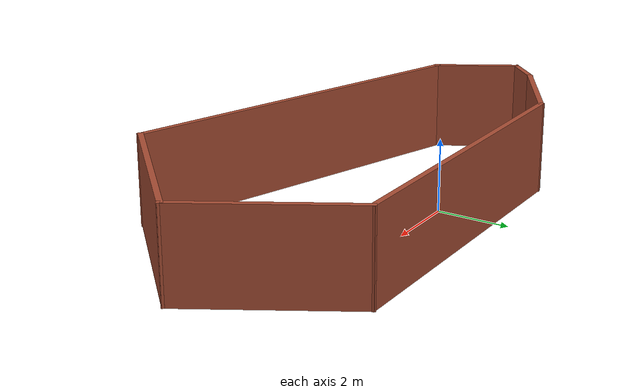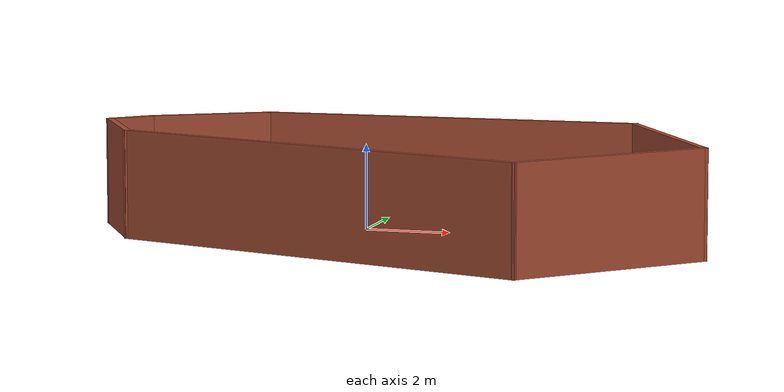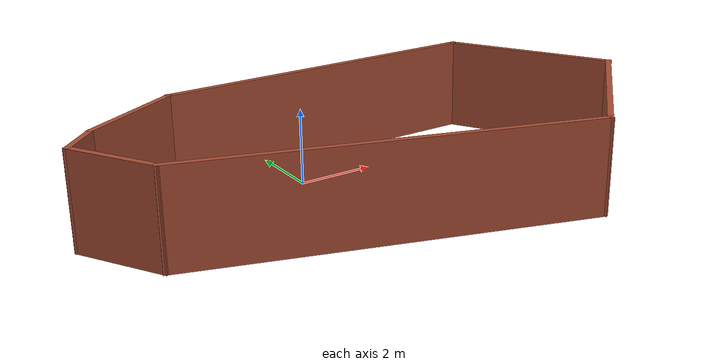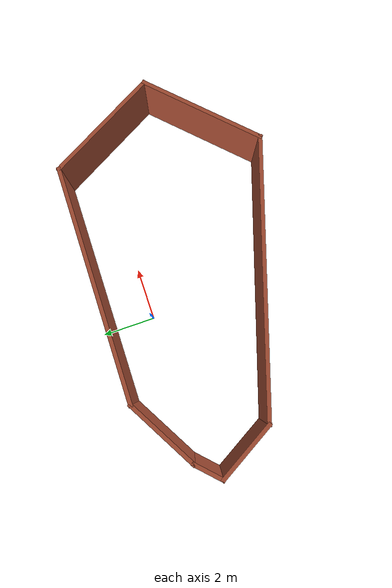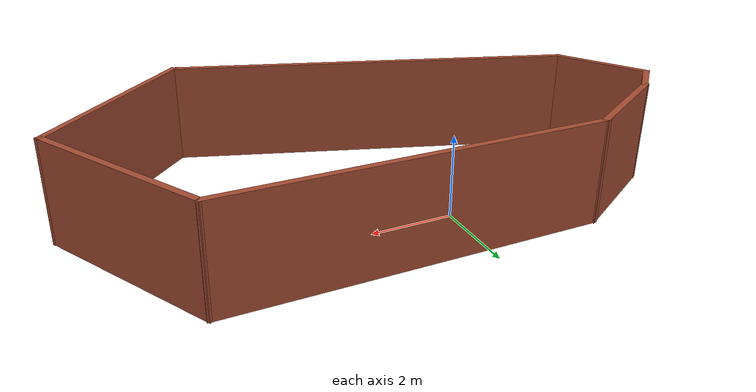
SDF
<?xml version='1.0'?>
<sdf version='1.7'>
  <model name='model'>
    <pose>1.13149 -2.16042 0 0 -0 0</pose>
    <link name='Wall_10'>
      <collision name='Wall_10_Collision'>
        <geometry>
          <box>
            <size>3 0.15 2.5</size>
          </box>
        </geometry>
        <pose>0 0 1.25 0 -0 0</pose>
      </collision>
      <visual name='Wall_10_Visual'>
        <pose>0 0 1.25 0 -0 0</pose>
        <geometry>
          <box>
            <size>3 0.15 2.5</size>
          </box>
        </geometry>
        <material>
          <script>
            <uri>file://media/materials/scripts/gazebo.material</uri>
            <name>Gazebo/Bricks</name>
          </script>
          <ambient>1 1 1 1</ambient>
        </material>
        <meta>
          <layer>0</layer>
        </meta>
      </visual>
      <pose>-5.18609 2.9959 0 0 -0 0.523599</pose>
    </link>
    <link name='Wall_11'>
      <collision name='Wall_11_Collision'>
        <geometry>
          <box>
            <size>9 0.15 2.5</size>
          </box>
        </geometry>
        <pose>0 0 1.25 0 -0 0</pose>
      </collision>
      <visual name='Wall_11_Visual'>
        <pose>0 0 1.25 0 -0 0</pose>
        <geometry>
          <box>
            <size>9 0.15 2.5</size>
          </box>
        </geometry>
        <material>
          <script>
            <uri>file://media/materials/scripts/gazebo.material</uri>
            <name>Gazebo/Bricks</name>
          </script>
          <ambient>1 1 1 1</ambient>
        </material>
        <meta>
          <layer>0</layer>
        </meta>
      </visual>
      <pose>0.472995 3.7084 0 0 -0 0</pose>
    </link>
    <link name='Wall_12'>
      <collision name='Wall_12_Collision'>
        <geometry>
          <box>
            <size>4.75 0.15 2.5</size>
          </box>
        </geometry>
        <pose>0 0 1.25 0 -0 0</pose>
      </collision>
      <visual name='Wall_12_Visual'>
        <pose>0 0 1.25 0 -0 0</pose>
        <geometry>
          <box>
            <size>4.75 0.15 2.5</size>
          </box>
        </geometry>
        <material>
          <script>
            <uri>file://media/materials/scripts/gazebo.material</uri>
            <name>Gazebo/Bricks</name>
          </script>
          <ambient>1 1 1 1</ambient>
        </material>
        <meta>
          <layer>0</layer>
        </meta>
      </visual>
      <pose>6.048 1.71654 0 0 -0 -1.0472</pose>
    </link>
    <link name='Wall_13'>
      <collision name='Wall_13_Collision'>
        <geometry>
          <box>
            <size>5 0.15 2.5</size>
          </box>
        </geometry>
        <pose>0 0 1.25 0 -0 0</pose>
      </collision>
      <visual name='Wall_13_Visual'>
        <pose>0 0 1.25 0 -0 0</pose>
        <geometry>
          <box>
            <size>5 0.15 2.5</size>
          </box>
        </geometry>
        <material>
          <script>
            <uri>file://media/materials/scripts/gazebo.material</uri>
            <name>Gazebo/Bricks</name>
          </script>
          <ambient>1 1 1 1</ambient>
        </material>
        <meta>
          <layer>0</layer>
        </meta>
      </visual>
      <pose>5.48326 -1.99005 0 0 -0 -2.35619</pose>
    </link>
    <link name='Wall_14'>
      <collision name='Wall_14_Collision'>
        <geometry>
          <box>
            <size>10.4435 0.15 2.5</size>
          </box>
        </geometry>
        <pose>0 0 1.25 0 -0 0</pose>
      </collision>
      <visual name='Wall_14_Visual'>
        <pose>0 0 1.25 0 -0 0</pose>
        <geometry>
          <box>
            <size>10.4435 0.15 2.5</size>
          </box>
        </geometry>
        <material>
          <script>
            <uri>file://media/materials/scripts/gazebo.material</uri>
            <name>Gazebo/Bricks</name>
          </script>
          <ambient>1 1 1 1</ambient>
        </material>
        <meta>
          <layer>0</layer>
        </meta>
      </visual>
      <pose>-1.12723 -2.11718 0 0 -0 2.82801</pose>
    </link>
    <link name='Wall_7'>
      <collision name='Wall_7_Collision'>
        <geometry>
          <box>
            <size>2.5 0.15 2.5</size>
          </box>
        </geometry>
        <pose>0 0 1.25 0 -0 0</pose>
      </collision>
      <visual name='Wall_7_Visual'>
        <pose>0 0 1.25 0 -0 0</pose>
        <geometry>
          <box>
            <size>2.5 0.15 2.5</size>
          </box>
        </geometry>
        <material>
          <script>
            <uri>file://media/materials/scripts/gazebo.material</uri>
            <name>Gazebo/Bricks</name>
          </script>
          <ambient>1 1 1 1</ambient>
        </material>
        <meta>
          <layer>0</layer>
        </meta>
      </visual>
      <pose>-6.6105 0.488002 0 0 -0 2.0944</pose>
    </link>
    <link name='Wall_8'>
      <collision name='Wall_8_Collision'>
        <geometry>
          <box>
            <size>1.25 0.15 2.5</size>
          </box>
        </geometry>
        <pose>0 0 1.25 0 -0 0</pose>
      </collision>
      <visual name='Wall_8_Visual'>
        <pose>0 0 1.25 0 -0 0</pose>
        <geometry>
          <box>
            <size>1.25 0.15 2.5</size>
          </box>
        </geometry>
        <material>
          <script>
            <uri>file://media/materials/scripts/gazebo.material</uri>
            <name>Gazebo/Bricks</name>
          </script>
          <ambient>1 1 1 1</ambient>
        </material>
        <meta>
          <layer>0</layer>
        </meta>
      </visual>
      <pose>-6.80909 1.89449 0 0 -0 0.785398</pose>
    </link>
    <static>1</static>
  </model>
</sdf>
